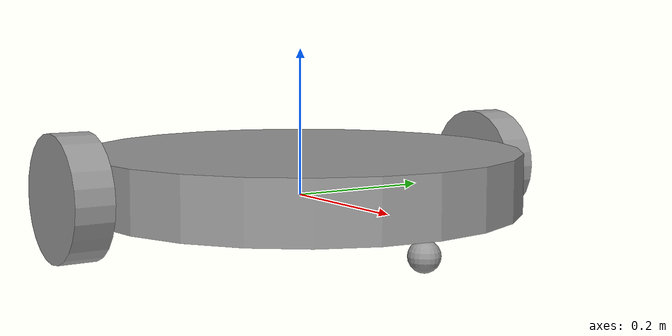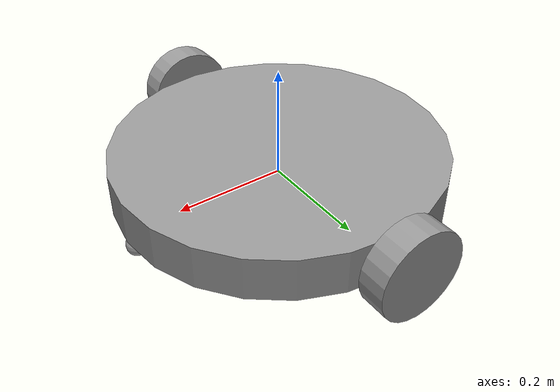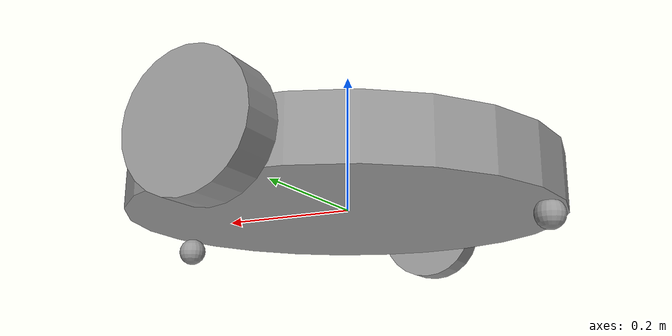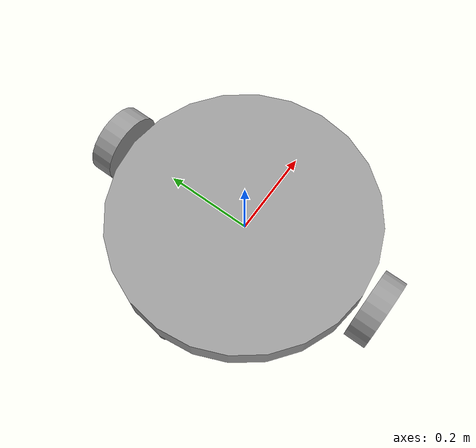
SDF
<?xml version='1.0'?>
<sdf version='1.6'>
  <model name='myrobot'>
    <link name='link_1'>
      <pose frame=''>-0.000148 0.002031 0.023 0 -0 0</pose>
      <inertial>
        <mass>1</mass>
        <inertia>
          <ixx>0.145833</ixx>
          <ixy>0</ixy>
          <ixz>0</ixz>
          <iyy>0.145833</iyy>
          <iyz>0</iyz>
          <izz>0.125</izz>
        </inertia>
        <pose frame=''>0 0 0 0 -0 0</pose>
      </inertial>
      <gravity>1</gravity>
      <self_collide>0</self_collide>
      <kinematic>0</kinematic>
      <visual name='visual'>
        <pose frame=''>0 0 0 0 -0 0</pose>
        <geometry>
          <cylinder>
            <radius>0.3</radius>
            <length>0.08</length>
          </cylinder>
        </geometry>
        <material>
          <lighting>1</lighting>
          <script>
            <uri>file://media/materials/scripts/gazebo.material</uri>
            <name>Gazebo/Grey</name>
          </script>
          <shader type='pixel'>
            <normal_map>__default__</normal_map>
          </shader>
          <ambient>0.3 0.3 0.3 1</ambient>
          <diffuse>0.7 0.7 0.7 1</diffuse>
          <specular>0.01 0.01 0.01 1</specular>
          <emissive>0 0 0 1</emissive>
        </material>
        <transparency>0</transparency>
        <cast_shadows>1</cast_shadows>
      </visual>
      <collision name='collision'>
        <laser_retro>0</laser_retro>
        <max_contacts>10</max_contacts>
        <pose frame=''>0 0 0 0 -0 0</pose>
        <geometry>
          <cylinder>
            <radius>0.3</radius>
            <length>0.08</length>
          </cylinder>
        </geometry>
        <surface>
          <friction>
            <ode>
              <mu>1</mu>
              <mu2>1</mu2>
              <fdir1>0 0 0</fdir1>
              <slip1>0</slip1>
              <slip2>0</slip2>
            </ode>
            <torsional>
              <coefficient>1</coefficient>
              <patch_radius>0</patch_radius>
              <surface_radius>0</surface_radius>
              <use_patch_radius>1</use_patch_radius>
              <ode>
                <slip>0</slip>
              </ode>
            </torsional>
          </friction>
          <bounce>
            <restitution_coefficient>0</restitution_coefficient>
            <threshold>1e+06</threshold>
          </bounce>
          <contact>
            <collide_without_contact>0</collide_without_contact>
            <collide_without_contact_bitmask>1</collide_without_contact_bitmask>
            <collide_bitmask>1</collide_bitmask>
            <ode>
              <soft_cfm>0</soft_cfm>
              <soft_erp>0.2</soft_erp>
              <kp>1e+13</kp>
              <kd>1</kd>
              <max_vel>0.01</max_vel>
              <min_depth>0</min_depth>
            </ode>
            <bullet>
              <split_impulse>1</split_impulse>
              <split_impulse_penetration_threshold>-0.01</split_impulse_penetration_threshold>
              <soft_cfm>0</soft_cfm>
              <soft_erp>0.2</soft_erp>
              <kp>1e+13</kp>
              <kd>1</kd>
            </bullet>
          </contact>
        </surface>
      </collision>
    </link>
    <link name='link_2'>
      <pose frame=''>0.00372 -0.333364 0.023 1.5705 -0 0</pose>
      <inertial>
        <mass>1</mass>
        <inertia>
          <ixx>0.145833</ixx>
          <ixy>0</ixy>
          <ixz>0</ixz>
          <iyy>0.145833</iyy>
          <iyz>0</iyz>
          <izz>0.125</izz>
        </inertia>
        <pose frame=''>0 0 0 0 -0 0</pose>
      </inertial>
      <gravity>1</gravity>
      <self_collide>0</self_collide>
      <kinematic>0</kinematic>
      <visual name='visual'>
        <pose frame=''>0 0 0 0 -0 0</pose>
        <geometry>
          <cylinder>
            <radius>0.08</radius>
            <length>0.05</length>
          </cylinder>
        </geometry>
        <material>
          <lighting>1</lighting>
          <script>
            <uri>file://media/materials/scripts/gazebo.material</uri>
            <name>Gazebo/Grey</name>
          </script>
          <shader type='pixel'>
            <normal_map>__default__</normal_map>
          </shader>
          <ambient>0.3 0.3 0.3 1</ambient>
          <diffuse>0.7 0.7 0.7 1</diffuse>
          <specular>0.01 0.01 0.01 1</specular>
          <emissive>0 0 0 1</emissive>
        </material>
        <transparency>0</transparency>
        <cast_shadows>1</cast_shadows>
      </visual>
      <collision name='collision'>
        <laser_retro>0</laser_retro>
        <max_contacts>10</max_contacts>
        <pose frame=''>0 0 0 0 -0 0</pose>
        <geometry>
          <cylinder>
            <radius>0.08</radius>
            <length>0.05</length>
          </cylinder>
        </geometry>
        <surface>
          <friction>
            <ode>
              <mu>1</mu>
              <mu2>1</mu2>
              <fdir1>0 0 0</fdir1>
              <slip1>0</slip1>
              <slip2>0</slip2>
            </ode>
            <torsional>
              <coefficient>1</coefficient>
              <patch_radius>0</patch_radius>
              <surface_radius>0</surface_radius>
              <use_patch_radius>1</use_patch_radius>
              <ode>
                <slip>0</slip>
              </ode>
            </torsional>
          </friction>
          <bounce>
            <restitution_coefficient>0</restitution_coefficient>
            <threshold>1e+06</threshold>
          </bounce>
          <contact>
            <collide_without_contact>0</collide_without_contact>
            <collide_without_contact_bitmask>1</collide_without_contact_bitmask>
            <collide_bitmask>1</collide_bitmask>
            <ode>
              <soft_cfm>0</soft_cfm>
              <soft_erp>0.2</soft_erp>
              <kp>1e+13</kp>
              <kd>1</kd>
              <max_vel>0.01</max_vel>
              <min_depth>0</min_depth>
            </ode>
            <bullet>
              <split_impulse>1</split_impulse>
              <split_impulse_penetration_threshold>-0.01</split_impulse_penetration_threshold>
              <soft_cfm>0</soft_cfm>
              <soft_erp>0.2</soft_erp>
              <kp>1e+13</kp>
              <kd>1</kd>
            </bullet>
          </contact>
        </surface>
      </collision>
    </link>
    <link name='link_2_clone'>
      <pose frame=''>-0.003274 0.336298 0.023 1.5705 -0 0</pose>
      <inertial>
        <mass>1</mass>
        <inertia>
          <ixx>0.145833</ixx>
          <ixy>0</ixy>
          <ixz>0</ixz>
          <iyy>0.145833</iyy>
          <iyz>0</iyz>
          <izz>0.125</izz>
        </inertia>
        <pose frame=''>0 0 0 0 -0 0</pose>
      </inertial>
      <self_collide>0</self_collide>
      <kinematic>0</kinematic>
      <gravity>1</gravity>
      <visual name='visual'>
        <pose frame=''>0 0 0 0 -0 0</pose>
        <geometry>
          <cylinder>
            <radius>0.08</radius>
            <length>0.05</length>
          </cylinder>
        </geometry>
        <material>
          <lighting>1</lighting>
          <script>
            <uri>file://media/materials/scripts/gazebo.material</uri>
            <name>Gazebo/Grey</name>
          </script>
          <shader type='pixel'>
            <normal_map>__default__</normal_map>
          </shader>
          <ambient>0.3 0.3 0.3 1</ambient>
          <diffuse>0.7 0.7 0.7 1</diffuse>
          <specular>0.01 0.01 0.01 1</specular>
          <emissive>0 0 0 1</emissive>
        </material>
        <transparency>0</transparency>
        <cast_shadows>1</cast_shadows>
      </visual>
      <collision name='collision'>
        <laser_retro>0</laser_retro>
        <max_contacts>10</max_contacts>
        <pose frame=''>0 0 0 0 -0 0</pose>
        <geometry>
          <cylinder>
            <radius>0.08</radius>
            <length>0.05</length>
          </cylinder>
        </geometry>
        <surface>
          <friction>
            <ode>
              <mu>1</mu>
              <mu2>1</mu2>
              <fdir1>0 0 0</fdir1>
              <slip1>0</slip1>
              <slip2>0</slip2>
            </ode>
            <torsional>
              <coefficient>1</coefficient>
              <patch_radius>0</patch_radius>
              <surface_radius>0</surface_radius>
              <use_patch_radius>1</use_patch_radius>
              <ode>
                <slip>0</slip>
              </ode>
            </torsional>
          </friction>
          <bounce>
            <restitution_coefficient>0</restitution_coefficient>
            <threshold>1e+06</threshold>
          </bounce>
          <contact>
            <collide_without_contact>0</collide_without_contact>
            <collide_without_contact_bitmask>1</collide_without_contact_bitmask>
            <collide_bitmask>1</collide_bitmask>
            <ode>
              <soft_cfm>0</soft_cfm>
              <soft_erp>0.2</soft_erp>
              <kp>1e+13</kp>
              <kd>1</kd>
              <max_vel>0.01</max_vel>
              <min_depth>0</min_depth>
            </ode>
            <bullet>
              <split_impulse>1</split_impulse>
              <split_impulse_penetration_threshold>-0.01</split_impulse_penetration_threshold>
              <soft_cfm>0</soft_cfm>
              <soft_erp>0.2</soft_erp>
              <kp>1e+13</kp>
              <kd>1</kd>
            </bullet>
          </contact>
        </surface>
      </collision>
    </link>
    <link name='link_3'>
      <pose frame=''>0.279852 -0.006996 -0.037 0 -0 0</pose>
      <inertial>
        <mass>1</mass>
        <inertia>
          <ixx>0.1</ixx>
          <ixy>0</ixy>
          <ixz>0</ixz>
          <iyy>0.1</iyy>
          <iyz>0</iyz>
          <izz>0.1</izz>
        </inertia>
        <pose frame=''>0 0 0 0 -0 0</pose>
      </inertial>
      <gravity>1</gravity>
      <self_collide>0</self_collide>
      <kinematic>0</kinematic>
      <visual name='visual'>
        <pose frame=''>0 0 0 0 -0 0</pose>
        <geometry>
          <sphere>
            <radius>0.02</radius>
          </sphere>
        </geometry>
        <material>
          <lighting>1</lighting>
          <script>
            <uri>file://media/materials/scripts/gazebo.material</uri>
            <name>Gazebo/Grey</name>
          </script>
          <shader type='pixel'>
            <normal_map>__default__</normal_map>
          </shader>
          <ambient>0.3 0.3 0.3 1</ambient>
          <diffuse>0.7 0.7 0.7 1</diffuse>
          <specular>0.01 0.01 0.01 1</specular>
          <emissive>0 0 0 1</emissive>
        </material>
        <transparency>0</transparency>
        <cast_shadows>1</cast_shadows>
      </visual>
      <collision name='collision'>
        <laser_retro>0</laser_retro>
        <max_contacts>10</max_contacts>
        <pose frame=''>0 0 0 0 -0 0</pose>
        <geometry>
          <sphere>
            <radius>0.02</radius>
          </sphere>
        </geometry>
        <surface>
          <friction>
            <ode>
              <mu>1</mu>
              <mu2>1</mu2>
              <fdir1>0 0 0</fdir1>
              <slip1>0</slip1>
              <slip2>0</slip2>
            </ode>
            <torsional>
              <coefficient>1</coefficient>
              <patch_radius>0</patch_radius>
              <surface_radius>0</surface_radius>
              <use_patch_radius>1</use_patch_radius>
              <ode>
                <slip>0</slip>
              </ode>
            </torsional>
          </friction>
          <bounce>
            <restitution_coefficient>0</restitution_coefficient>
            <threshold>1e+06</threshold>
          </bounce>
          <contact>
            <collide_without_contact>0</collide_without_contact>
            <collide_without_contact_bitmask>1</collide_without_contact_bitmask>
            <collide_bitmask>1</collide_bitmask>
            <ode>
              <soft_cfm>0</soft_cfm>
              <soft_erp>0.2</soft_erp>
              <kp>1e+13</kp>
              <kd>1</kd>
              <max_vel>0.01</max_vel>
              <min_depth>0</min_depth>
            </ode>
            <bullet>
              <split_impulse>1</split_impulse>
              <split_impulse_penetration_threshold>-0.01</split_impulse_penetration_threshold>
              <soft_cfm>0</soft_cfm>
              <soft_erp>0.2</soft_erp>
              <kp>1e+13</kp>
              <kd>1</kd>
            </bullet>
          </contact>
        </surface>
      </collision>
    </link>
    <link name='link_3_clone'>
      <pose frame=''>-0.280148 0.002031 -0.032 0 -0 0</pose>
      <inertial>
        <mass>1</mass>
        <inertia>
          <ixx>0.1</ixx>
          <ixy>0</ixy>
          <ixz>0</ixz>
          <iyy>0.1</iyy>
          <iyz>0</iyz>
          <izz>0.1</izz>
        </inertia>
        <pose frame=''>-0.2 0 0.02 0 -0 0</pose>
      </inertial>
      <self_collide>0</self_collide>
      <kinematic>0</kinematic>
      <gravity>1</gravity>
      <visual name='visual'>
        <pose frame=''>0 0 0 0 -0 0</pose>
        <geometry>
          <sphere>
            <radius>0.02</radius>
          </sphere>
        </geometry>
        <material>
          <lighting>1</lighting>
          <script>
            <uri>file://media/materials/scripts/gazebo.material</uri>
            <name>Gazebo/Grey</name>
          </script>
          <shader type='pixel'>
            <normal_map>__default__</normal_map>
          </shader>
          <ambient>0.3 0.3 0.3 1</ambient>
          <diffuse>0.7 0.7 0.7 1</diffuse>
          <specular>0.01 0.01 0.01 1</specular>
          <emissive>0 0 0 1</emissive>
        </material>
        <transparency>0</transparency>
        <cast_shadows>1</cast_shadows>
      </visual>
      <collision name='collision'>
        <laser_retro>0</laser_retro>
        <max_contacts>10</max_contacts>
        <pose frame=''>0 0 0 0 -0 0</pose>
        <geometry>
          <sphere>
            <radius>0.02</radius>
          </sphere>
        </geometry>
        <surface>
          <friction>
            <ode>
              <mu>1</mu>
              <mu2>1</mu2>
              <fdir1>0 0 0</fdir1>
              <slip1>0</slip1>
              <slip2>0</slip2>
            </ode>
            <torsional>
              <coefficient>1</coefficient>
              <patch_radius>0</patch_radius>
              <surface_radius>0</surface_radius>
              <use_patch_radius>1</use_patch_radius>
              <ode>
                <slip>0</slip>
              </ode>
            </torsional>
          </friction>
          <bounce>
            <restitution_coefficient>0</restitution_coefficient>
            <threshold>1e+06</threshold>
          </bounce>
          <contact>
            <collide_without_contact>0</collide_without_contact>
            <collide_without_contact_bitmask>1</collide_without_contact_bitmask>
            <collide_bitmask>1</collide_bitmask>
            <ode>
              <soft_cfm>0</soft_cfm>
              <soft_erp>0.2</soft_erp>
              <kp>1e+13</kp>
              <kd>1</kd>
              <max_vel>0.01</max_vel>
              <min_depth>0</min_depth>
            </ode>
            <bullet>
              <split_impulse>1</split_impulse>
              <split_impulse_penetration_threshold>-0.01</split_impulse_penetration_threshold>
              <soft_cfm>0</soft_cfm>
              <soft_erp>0.2</soft_erp>
              <kp>1e+13</kp>
              <kd>1</kd>
            </bullet>
          </contact>
        </surface>
      </collision>
    </link>
    <joint name='link_1_JOINT_1' type='revolute'>
      <parent>link_1</parent>
      <child>link_2_clone</child>
      <pose frame=''>0 0 0 0 -0 0</pose>
      <axis>
        <xyz>0 0 1</xyz>
        <use_parent_model_frame>0</use_parent_model_frame>
        <limit>
          <lower>-1.79769e+308</lower>
          <upper>1.79769e+308</upper>
          <effort>-1</effort>
          <velocity>-1</velocity>
        </limit>
        <dynamics>
          <spring_reference>0</spring_reference>
          <spring_stiffness>0</spring_stiffness>
          <damping>0</damping>
        </dynamics>
      </axis>
      <physics>
        <ode>
          <limit>
            <cfm>0</cfm>
            <erp>0.2</erp>
          </limit>
          <suspension>
            <cfm>0</cfm>
            <erp>0.2</erp>
          </suspension>
        </ode>
      </physics>
    </joint>
    <joint name='link_1_JOINT_3' type='revolute'>
      <parent>link_1</parent>
      <child>link_2</child>
      <pose frame=''>0 0 0 -0.01 0 0</pose>
      <axis>
        <xyz>0 0 1</xyz>
        <use_parent_model_frame>0</use_parent_model_frame>
        <limit>
          <lower>-1.79769e+308</lower>
          <upper>1.79769e+308</upper>
          <effort>-1</effort>
          <velocity>-1</velocity>
        </limit>
        <dynamics>
          <spring_reference>0</spring_reference>
          <spring_stiffness>0</spring_stiffness>
          <damping>0</damping>
        </dynamics>
      </axis>
      <physics>
        <ode>
          <limit>
            <cfm>0</cfm>
            <erp>0.2</erp>
          </limit>
          <suspension>
            <cfm>0</cfm>
            <erp>0.2</erp>
          </suspension>
        </ode>
      </physics>
    </joint>
    <joint name='link_1_JOINT_4' type='ball'>
      <parent>link_1</parent>
      <child>link_3_clone</child>
      <pose frame=''>0 0 0 0 -0 0</pose>
      <physics>
        <ode>
          <limit>
            <cfm>0</cfm>
            <erp>0.2</erp>
          </limit>
          <suspension>
            <cfm>0</cfm>
            <erp>0.2</erp>
          </suspension>
        </ode>
      </physics>
    </joint>
    <joint name='link_1_JOINT_5' type='revolute'>
      <parent>link_1</parent>
      <child>link_3_LINK_FRAME_VISUAL___X_AXIS</child>
      <pose frame=''>0 0 0 0 -0 0</pose>
      <axis>
        <xyz>1 0 0</xyz>
        <use_parent_model_frame>0</use_parent_model_frame>
        <limit>
          <lower>-1.79769e+308</lower>
          <upper>1.79769e+308</upper>
          <effort>-1</effort>
          <velocity>-1</velocity>
        </limit>
        <dynamics>
          <spring_reference>0</spring_reference>
          <spring_stiffness>0</spring_stiffness>
          <damping>0</damping>
        </dynamics>
      </axis>
      <physics>
        <ode>
          <limit>
            <cfm>0</cfm>
            <erp>0.2</erp>
          </limit>
          <suspension>
            <cfm>0</cfm>
            <erp>0.2</erp>
          </suspension>
        </ode>
      </physics>
    </joint>
    <static>0</static>
    <allow_auto_disable>1</allow_auto_disable>
  </model>
</sdf>
